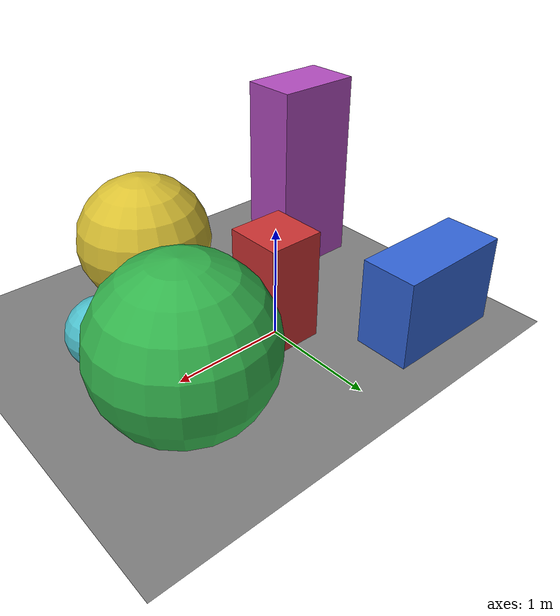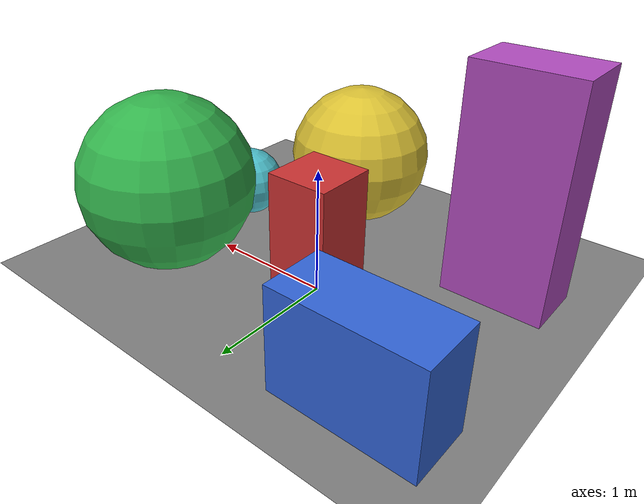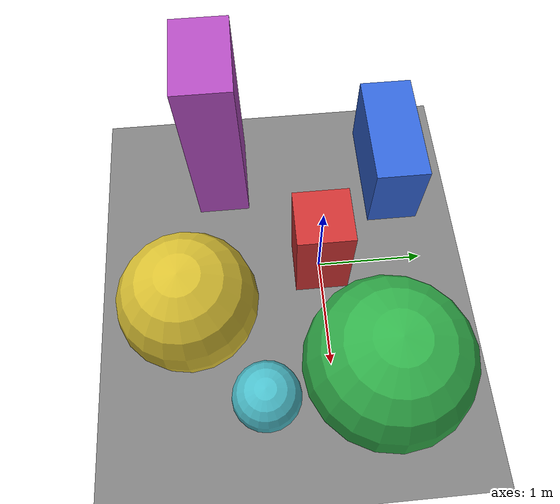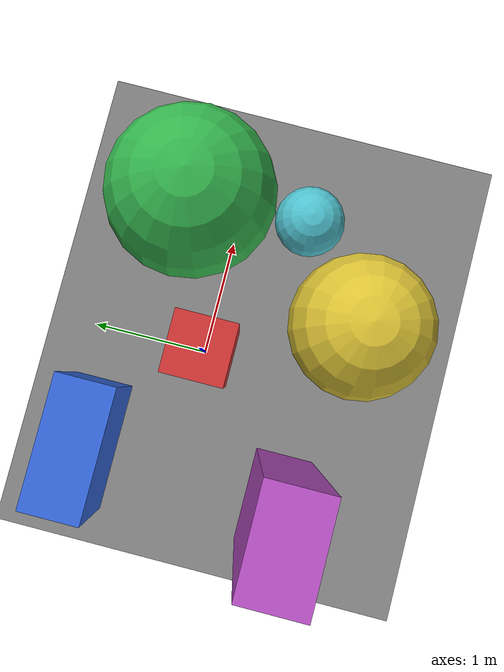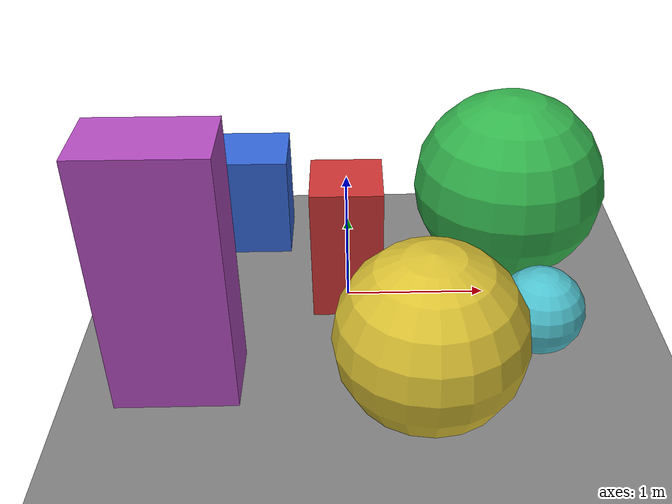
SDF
<?xml version="1.0" ?>
<sdf version="1.6">
  <world name="rgbd16">
    <physics name="1ms" type="ignored">
      <max_step_size>0.001</max_step_size><real_time_factor>1.0</real_time_factor>
    </physics>
    <plugin filename="gz-sim-physics-system" name="gz::sim::systems::Physics"/>
    <plugin filename="gz-sim-sensors-system" name="gz::sim::systems::Sensors">
      <render_engine>ogre2</render_engine>
    </plugin>
    <plugin filename="gz-sim-scene-broadcaster-system" name="gz::sim::systems::SceneBroadcaster"/>
    <light type="directional" name="sun">
      <cast_shadows>true</cast_shadows><pose>0 0 10 0 0 0</pose>
      <diffuse>0.8 0.8 0.8 1</diffuse><specular>0.2 0.2 0.2 1</specular>
      <direction>-0.5 0.1 -0.9</direction>
    </light>
    <model name="ground_plane"><static>true</static><link name="link">
      <visual name="visual"><geometry><plane><normal>0 0 1</normal><size>40 40</size></plane></geometry>
        <material><ambient>0.3 0.3 0.3 1</ambient><diffuse>0.5 0.5 0.5 1</diffuse></material></visual>
    </link></model>

    <model name="obj_0">
      <static>true</static>
      <pose>0 0 0.5 0 0 0</pose>
      <link name="link">
        <visual name="v">
          <geometry><box><size>0.50 0.50 1.00</size></box></geometry>
          <material><ambient>0.8 0.2 0.2 1</ambient><diffuse>0.8 0.2 0.2 1</diffuse>
            <specular>0.3 0.3 0.3 1</specular></material>
        </visual>
      </link>
    </model>
    <model name="obj_1">
      <static>true</static>
      <pose>1.2 0.4 0.7 0 0 0</pose>
      <link name="link">
        <visual name="v">
          <geometry><sphere><radius>0.70</radius></sphere></geometry>
          <material><ambient>0.2 0.7 0.3 1</ambient><diffuse>0.2 0.7 0.3 1</diffuse>
            <specular>0.3 0.3 0.3 1</specular></material>
        </visual>
      </link>
    </model>
    <model name="obj_2">
      <static>true</static>
      <pose>-1.0 0.8 0.4 0 0 0</pose>
      <link name="link">
        <visual name="v">
          <geometry><box><size>1.10 0.50 0.80</size></box></geometry>
          <material><ambient>0.2 0.4 0.85 1</ambient><diffuse>0.2 0.4 0.85 1</diffuse>
            <specular>0.3 0.3 0.3 1</specular></material>
        </visual>
      </link>
    </model>
    <model name="obj_3">
      <static>true</static>
      <pose>0.5 -1.2 0.6 0 0 0</pose>
      <link name="link">
        <visual name="v">
          <geometry><sphere><radius>0.60</radius></sphere></geometry>
          <material><ambient>0.85 0.75 0.2 1</ambient><diffuse>0.85 0.75 0.2 1</diffuse>
            <specular>0.3 0.3 0.3 1</specular></material>
        </visual>
      </link>
    </model>
    <model name="obj_4">
      <static>true</static>
      <pose>-1.1 -0.9 0.9 0 0 0</pose>
      <link name="link">
        <visual name="v">
          <geometry><box><size>0.80 0.50 1.80</size></box></geometry>
          <material><ambient>0.7 0.3 0.75 1</ambient><diffuse>0.7 0.3 0.75 1</diffuse>
            <specular>0.3 0.3 0.3 1</specular></material>
        </visual>
      </link>
    </model>
    <model name="obj_5">
      <static>true</static>
      <pose>1.3 -0.6 0.3 0 0 0</pose>
      <link name="link">
        <visual name="v">
          <geometry><sphere><radius>0.30</radius></sphere></geometry>
          <material><ambient>0.3 0.75 0.8 1</ambient><diffuse>0.3 0.75 0.8 1</diffuse>
            <specular>0.3 0.3 0.3 1</specular></material>
        </visual>
      </link>
    </model>

    <model name="rgbd_0">
      <static>true</static>
      <pose>6.000 0.000 1.200 0 0.15 -3.1416</pose>
      <link name="link">
        <sensor name="rgbd" type="rgbd_camera">
          <camera>
            <horizontal_fov>1.047</horizontal_fov>
            <image><width>640</width><height>480</height></image>
            <clip><near>0.1</near><far>100</far></clip>
          </camera>
          <always_on>1</always_on>
          <update_rate>60</update_rate>
          <topic>rgbd_0</topic>
        </sensor>
      </link>
    </model>
    <model name="rgbd_1">
      <static>true</static>
      <pose>5.543 2.296 1.200 0 0.15 -2.7489</pose>
      <link name="link">
        <sensor name="rgbd" type="rgbd_camera">
          <camera>
            <horizontal_fov>1.047</horizontal_fov>
            <image><width>640</width><height>480</height></image>
            <clip><near>0.1</near><far>100</far></clip>
          </camera>
          <always_on>1</always_on>
          <update_rate>60</update_rate>
          <topic>rgbd_1</topic>
        </sensor>
      </link>
    </model>
    <model name="rgbd_2">
      <static>true</static>
      <pose>4.243 4.243 1.200 0 0.15 -2.3562</pose>
      <link name="link">
        <sensor name="rgbd" type="rgbd_camera">
          <camera>
            <horizontal_fov>1.047</horizontal_fov>
            <image><width>640</width><height>480</height></image>
            <clip><near>0.1</near><far>100</far></clip>
          </camera>
          <always_on>1</always_on>
          <update_rate>60</update_rate>
          <topic>rgbd_2</topic>
        </sensor>
      </link>
    </model>
    <model name="rgbd_3">
      <static>true</static>
      <pose>2.296 5.543 1.200 0 0.15 -1.9635</pose>
      <link name="link">
        <sensor name="rgbd" type="rgbd_camera">
          <camera>
            <horizontal_fov>1.047</horizontal_fov>
            <image><width>640</width><height>480</height></image>
            <clip><near>0.1</near><far>100</far></clip>
          </camera>
          <always_on>1</always_on>
          <update_rate>60</update_rate>
          <topic>rgbd_3</topic>
        </sensor>
      </link>
    </model>
    <model name="rgbd_4">
      <static>true</static>
      <pose>0.000 6.000 1.200 0 0.15 -1.5708</pose>
      <link name="link">
        <sensor name="rgbd" type="rgbd_camera">
          <camera>
            <horizontal_fov>1.047</horizontal_fov>
            <image><width>640</width><height>480</height></image>
            <clip><near>0.1</near><far>100</far></clip>
          </camera>
          <always_on>1</always_on>
          <update_rate>60</update_rate>
          <topic>rgbd_4</topic>
        </sensor>
      </link>
    </model>
    <model name="rgbd_5">
      <static>true</static>
      <pose>-2.296 5.543 1.200 0 0.15 -1.1781</pose>
      <link name="link">
        <sensor name="rgbd" type="rgbd_camera">
          <camera>
            <horizontal_fov>1.047</horizontal_fov>
            <image><width>640</width><height>480</height></image>
            <clip><near>0.1</near><far>100</far></clip>
          </camera>
          <always_on>1</always_on>
          <update_rate>60</update_rate>
          <topic>rgbd_5</topic>
        </sensor>
      </link>
    </model>
    <model name="rgbd_6">
      <static>true</static>
      <pose>-4.243 4.243 1.200 0 0.15 -0.7854</pose>
      <link name="link">
        <sensor name="rgbd" type="rgbd_camera">
          <camera>
            <horizontal_fov>1.047</horizontal_fov>
            <image><width>640</width><height>480</height></image>
            <clip><near>0.1</near><far>100</far></clip>
          </camera>
          <always_on>1</always_on>
          <update_rate>60</update_rate>
          <topic>rgbd_6</topic>
        </sensor>
      </link>
    </model>
    <model name="rgbd_7">
      <static>true</static>
      <pose>-5.543 2.296 1.200 0 0.15 -0.3927</pose>
      <link name="link">
        <sensor name="rgbd" type="rgbd_camera">
          <camera>
            <horizontal_fov>1.047</horizontal_fov>
            <image><width>640</width><height>480</height></image>
            <clip><near>0.1</near><far>100</far></clip>
          </camera>
          <always_on>1</always_on>
          <update_rate>60</update_rate>
          <topic>rgbd_7</topic>
        </sensor>
      </link>
    </model>
    <model name="rgbd_8">
      <static>true</static>
      <pose>-6.000 0.000 1.200 0 0.15 -0.0000</pose>
      <link name="link">
        <sensor name="rgbd" type="rgbd_camera">
          <camera>
            <horizontal_fov>1.047</horizontal_fov>
            <image><width>640</width><height>480</height></image>
            <clip><near>0.1</near><far>100</far></clip>
          </camera>
          <always_on>1</always_on>
          <update_rate>60</update_rate>
          <topic>rgbd_8</topic>
        </sensor>
      </link>
    </model>
    <model name="rgbd_9">
      <static>true</static>
      <pose>-5.543 -2.296 1.200 0 0.15 0.3927</pose>
      <link name="link">
        <sensor name="rgbd" type="rgbd_camera">
          <camera>
            <horizontal_fov>1.047</horizontal_fov>
            <image><width>640</width><height>480</height></image>
            <clip><near>0.1</near><far>100</far></clip>
          </camera>
          <always_on>1</always_on>
          <update_rate>60</update_rate>
          <topic>rgbd_9</topic>
        </sensor>
      </link>
    </model>
    <model name="rgbd_10">
      <static>true</static>
      <pose>-4.243 -4.243 1.200 0 0.15 0.7854</pose>
      <link name="link">
        <sensor name="rgbd" type="rgbd_camera">
          <camera>
            <horizontal_fov>1.047</horizontal_fov>
            <image><width>640</width><height>480</height></image>
            <clip><near>0.1</near><far>100</far></clip>
          </camera>
          <always_on>1</always_on>
          <update_rate>60</update_rate>
          <topic>rgbd_10</topic>
        </sensor>
      </link>
    </model>
    <model name="rgbd_11">
      <static>true</static>
      <pose>-2.296 -5.543 1.200 0 0.15 1.1781</pose>
      <link name="link">
        <sensor name="rgbd" type="rgbd_camera">
          <camera>
            <horizontal_fov>1.047</horizontal_fov>
            <image><width>640</width><height>480</height></image>
            <clip><near>0.1</near><far>100</far></clip>
          </camera>
          <always_on>1</always_on>
          <update_rate>60</update_rate>
          <topic>rgbd_11</topic>
        </sensor>
      </link>
    </model>
    <model name="rgbd_12">
      <static>true</static>
      <pose>-0.000 -6.000 1.200 0 0.15 1.5708</pose>
      <link name="link">
        <sensor name="rgbd" type="rgbd_camera">
          <camera>
            <horizontal_fov>1.047</horizontal_fov>
            <image><width>640</width><height>480</height></image>
            <clip><near>0.1</near><far>100</far></clip>
          </camera>
          <always_on>1</always_on>
          <update_rate>60</update_rate>
          <topic>rgbd_12</topic>
        </sensor>
      </link>
    </model>
    <model name="rgbd_13">
      <static>true</static>
      <pose>2.296 -5.543 1.200 0 0.15 1.9635</pose>
      <link name="link">
        <sensor name="rgbd" type="rgbd_camera">
          <camera>
            <horizontal_fov>1.047</horizontal_fov>
            <image><width>640</width><height>480</height></image>
            <clip><near>0.1</near><far>100</far></clip>
          </camera>
          <always_on>1</always_on>
          <update_rate>60</update_rate>
          <topic>rgbd_13</topic>
        </sensor>
      </link>
    </model>
    <model name="rgbd_14">
      <static>true</static>
      <pose>4.243 -4.243 1.200 0 0.15 2.3562</pose>
      <link name="link">
        <sensor name="rgbd" type="rgbd_camera">
          <camera>
            <horizontal_fov>1.047</horizontal_fov>
            <image><width>640</width><height>480</height></image>
            <clip><near>0.1</near><far>100</far></clip>
          </camera>
          <always_on>1</always_on>
          <update_rate>60</update_rate>
          <topic>rgbd_14</topic>
        </sensor>
      </link>
    </model>
    <model name="rgbd_15">
      <static>true</static>
      <pose>5.543 -2.296 1.200 0 0.15 2.7489</pose>
      <link name="link">
        <sensor name="rgbd" type="rgbd_camera">
          <camera>
            <horizontal_fov>1.047</horizontal_fov>
            <image><width>640</width><height>480</height></image>
            <clip><near>0.1</near><far>100</far></clip>
          </camera>
          <always_on>1</always_on>
          <update_rate>60</update_rate>
          <topic>rgbd_15</topic>
        </sensor>
      </link>
    </model>
  </world>
</sdf>
